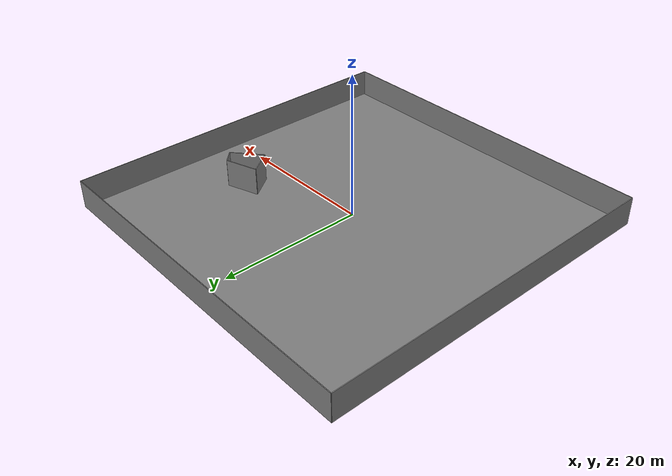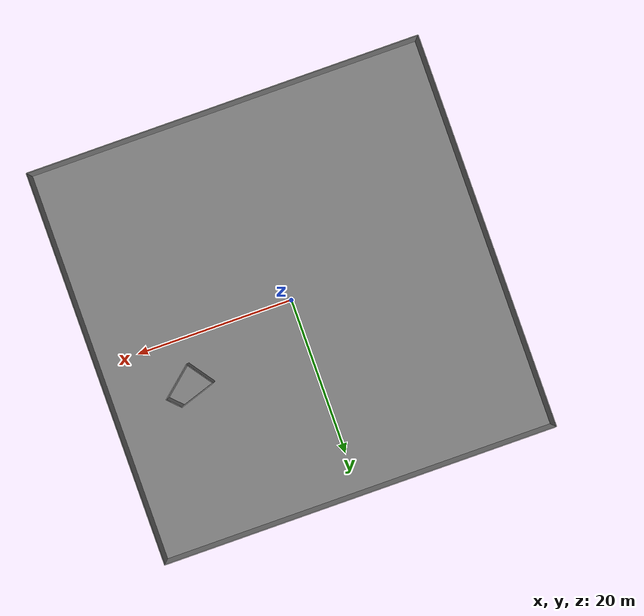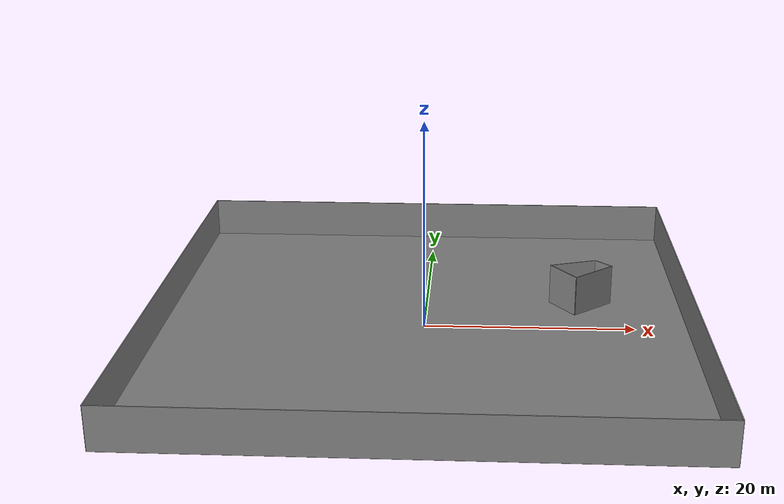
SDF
<?xml version="1.0"?>
<sdf version='1.8'>
  <!--Generated from custom python script-->
  <world name="mars_cave">
    <plugin name='ignition::gazebo::systems::Physics' filename='ignition-gazebo-physics-system' />
    <plugin name='ignition::gazebo::systems::UserCommands' filename='ignition-gazebo-user-commands-system' />
    <plugin name='ignition::gazebo::systems::SceneBroadcaster' filename='ignition-gazebo-scene-broadcaster-system' />
    <plugin name='ignition::gazebo::systems::Contact' filename='ignition-gazebo-contact-system' />
    <light name="sun" type="directional">
      <cast_shadows>1</cast_shadows>
      <pose>0 0 5 0 -0 0</pose>
      <diffuse>0.8 0.8 0.8 1</diffuse>
      <specular>0.2 0.2 0.2 1</specular>
      <attenuation>
        <range>1000</range>
        <constant>0.9</constant>
        <linear>0.01</linear>
        <quadratic>0.001</quadratic>
      </attenuation>
      <direction>-0.5 0.1 -0.9</direction>
    </light>
    <gravity>0 0 -3.71</gravity>
    <magnetic_field>6e-06 2.3e-05 -4.2e-05</magnetic_field>
    <atmosphere type="adiabatic"/>
    <physics name="default_physics" type="ignored">
      <max_step_size>0.01</max_step_size>
      <real_time_factor>1</real_time_factor>
      <real_time_update_rate>100</real_time_update_rate>
    </physics>
    <scene>
      <ambient>0.78 0.78 0.78 1</ambient>
      <background>0.31 0.19 0.04 1</background>
      <shadows>1</shadows>
    </scene>
    <model name="ground_plane">
      <static>1</static>
      <link name="link">
        <collision name="collision">
          <geometry>
            <plane>
              <normal>0 0 1</normal>
              <size>50 50</size>
            </plane>
          </geometry>
          <surface>
            <friction>
              <ode />
            </friction>
            <bounce />
            <contact />
          </surface>
        </collision>
        <visual name="visual">
          <geometry>
            <box>
              <size>50 50 0.1</size>
            </box>
          </geometry>
          <material>
            <ambient>0.5 0.5 0.5 1</ambient>
            <diffuse>0.5 0.5 0.5 1</diffuse>
            <specular>0.2 0.2 0.2 1</specular>
            <pbr>
              <metal>
                <albedo_map>
                  package://cave_explorer/worlds/textures/mars_terrain1.jpg
                </albedo_map>
              </metal>
            </pbr>
          </material>
        </visual>
      </link>
      <pose>0 0 0 0 0 0</pose>
    </model>
    <model name="border_1">
      <pose>0 25 2.0 0 0 0</pose>
      <link name="Wall_0">
        <collision name="Wall_0_Collision">
          <geometry>
            <box>
              <size>50 4 0.1</size>
            </box>
          </geometry>
        </collision>
        <visual name="Wall_0_Visual">
          <geometry>
            <box>
              <size>50 4 0.1</size>
            </box>
          </geometry>
          <material>
            <ambient>0.5 0.5 0.5 1</ambient>
            <diffuse>0.5 0.5 0.5 1</diffuse>
            <specular>0.2 0.2 0.2 1</specular>
            <pbr>
              <metal>
                <albedo_map>
                  package://cave_explorer/worlds/textures/wall13.png
                </albedo_map>
              </metal>
            </pbr>
          </material>
        </visual>
        <pose>0 0 0 1.5707963267948966 0 0</pose>
      </link>
      <static>1</static>
    </model>
    <model name="border_2">
      <pose>0 -25 2.0 0 0 0</pose>
      <link name="Wall_0">
        <collision name="Wall_0_Collision">
          <geometry>
            <box>
              <size>50 4 0.1</size>
            </box>
          </geometry>
        </collision>
        <visual name="Wall_0_Visual">
          <geometry>
            <box>
              <size>50 4 0.1</size>
            </box>
          </geometry>
          <material>
            <ambient>0.5 0.5 0.5 1</ambient>
            <diffuse>0.5 0.5 0.5 1</diffuse>
            <specular>0.2 0.2 0.2 1</specular>
            <pbr>
              <metal>
                <albedo_map>
                  package://cave_explorer/worlds/textures/wall13.png
                </albedo_map>
              </metal>
            </pbr>
          </material>
        </visual>
        <pose>0 0 0 1.5707963267948966 0 0</pose>
      </link>
      <static>1</static>
    </model>
    <model name="border_3">
      <pose>25 0 2.0 0 0 1.5707963267948966</pose>
      <link name="Wall_0">
        <collision name="Wall_0_Collision">
          <geometry>
            <box>
              <size>50 4 0.1</size>
            </box>
          </geometry>
        </collision>
        <visual name="Wall_0_Visual">
          <geometry>
            <box>
              <size>50 4 0.1</size>
            </box>
          </geometry>
          <material>
            <ambient>0.5 0.5 0.5 1</ambient>
            <diffuse>0.5 0.5 0.5 1</diffuse>
            <specular>0.2 0.2 0.2 1</specular>
            <pbr>
              <metal>
                <albedo_map>
                  package://cave_explorer/worlds/textures/wall13.png
                </albedo_map>
              </metal>
            </pbr>
          </material>
        </visual>
        <pose>0 0 0 1.5707963267948966 0 0</pose>
      </link>
      <static>1</static>
    </model>
    <model name="border_4">
      <pose>-25 0 2.0 0 0 1.5707963267948966</pose>
      <link name="Wall_0">
        <collision name="Wall_0_Collision">
          <geometry>
            <box>
              <size>50 4 0.1</size>
            </box>
          </geometry>
        </collision>
        <visual name="Wall_0_Visual">
          <geometry>
            <box>
              <size>50 4 0.1</size>
            </box>
          </geometry>
          <material>
            <ambient>0.5 0.5 0.5 1</ambient>
            <diffuse>0.5 0.5 0.5 1</diffuse>
            <specular>0.2 0.2 0.2 1</specular>
            <pbr>
              <metal>
                <albedo_map>
                  package://cave_explorer/worlds/textures/wall13.png
                </albedo_map>
              </metal>
            </pbr>
          </material>
        </visual>
        <pose>0 0 0 1.5707963267948966 0 0</pose>
      </link>
      <static>1</static>
    </model>
    <model name="wall_96">
      <pose>14.45 7.05 2.0 0 0 0.3217505543966422</pose>
      <link name="Wall_0">
        <collision name="Wall_0_Collision">
          <geometry>
            <box>
              <size>4.743416490252569 4 0.1</size>
            </box>
          </geometry>
        </collision>
        <visual name="Wall_0_Visual">
          <geometry>
            <box>
              <size>4.743416490252569 4 0.1</size>
            </box>
          </geometry>
          <material>
            <ambient>0.5 0.5 0.5 1</ambient>
            <diffuse>0.5 0.5 0.5 1</diffuse>
            <specular>0.2 0.2 0.2 1</specular>
            <pbr>
              <metal>
                <albedo_map>
                  package://cave_explorer/worlds/textures/wall13.png
                </albedo_map>
              </metal>
            </pbr>
          </material>
        </visual>
        <pose>0 0 0 1.5707963267948966 0 0</pose>
      </link>
      <static>1</static>
    </model>
    <model name="wall_97">
      <pose>13.35 4.7 2.0 0 0 2.193995656728963</pose>
      <link name="Wall_0">
        <collision name="Wall_0_Collision">
          <geometry>
            <box>
              <size>4 3.9408120990476063 0.1</size>
            </box>
          </geometry>
        </collision>
        <visual name="Wall_0_Visual">
          <geometry>
            <box>
              <size>4 3.9408120990476063 0.1</size>
            </box>
          </geometry>
          <material>
            <ambient>0.5 0.5 0.5 1</ambient>
            <diffuse>0.5 0.5 0.5 1</diffuse>
            <specular>0.2 0.2 0.2 1</specular>
            <pbr>
              <metal>
                <albedo_map>
                  package://cave_explorer/worlds/textures/wall13.png
                </albedo_map>
              </metal>
            </pbr>
          </material>
        </visual>
        <pose>0 0 0 1.5707963267948966 1.5707963267948966 0</pose>
      </link>
      <static>1</static>
    </model>
    <model name="wall_98">
      <pose>16.35 4.7 2.0 0 0 -2.4285318207309396</pose>
      <link name="Wall_0">
        <collision name="Wall_0_Collision">
          <geometry>
            <box>
              <size>4.891829923454003 4 0.1</size>
            </box>
          </geometry>
        </collision>
        <visual name="Wall_0_Visual">
          <geometry>
            <box>
              <size>4.891829923454003 4 0.1</size>
            </box>
          </geometry>
          <material>
            <ambient>0.5 0.5 0.5 1</ambient>
            <diffuse>0.5 0.5 0.5 1</diffuse>
            <specular>0.2 0.2 0.2 1</specular>
            <pbr>
              <metal>
                <albedo_map>
                  package://cave_explorer/worlds/textures/wall13.png
                </albedo_map>
              </metal>
            </pbr>
          </material>
        </visual>
        <pose>0 0 0 1.5707963267948966 0 0</pose>
      </link>
      <static>1</static>
    </model>
    <model name="wall_99">
      <pose>17.45 7.05 2.0 0 0 -0.7853981633974483</pose>
      <link name="Wall_0">
        <collision name="Wall_0_Collision">
          <geometry>
            <box>
              <size>2.1213203435596424 4 0.1</size>
            </box>
          </geometry>
        </collision>
        <visual name="Wall_0_Visual">
          <geometry>
            <box>
              <size>2.1213203435596424 4 0.1</size>
            </box>
          </geometry>
          <material>
            <ambient>0.5 0.5 0.5 1</ambient>
            <diffuse>0.5 0.5 0.5 1</diffuse>
            <specular>0.2 0.2 0.2 1</specular>
            <pbr>
              <metal>
                <albedo_map>
                  package://cave_explorer/worlds/textures/wall13.png
                </albedo_map>
              </metal>
            </pbr>
          </material>
        </visual>
        <pose>0 0 0 1.5707963267948966 0 0</pose>
      </link>
      <static>1</static>
    </model>
  </world>
</sdf>
